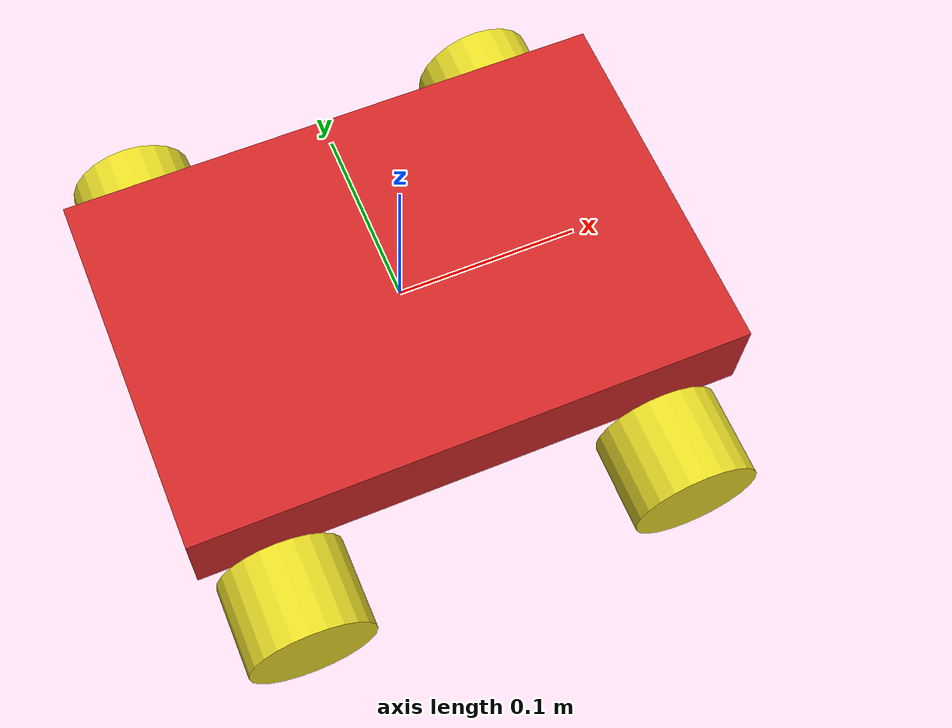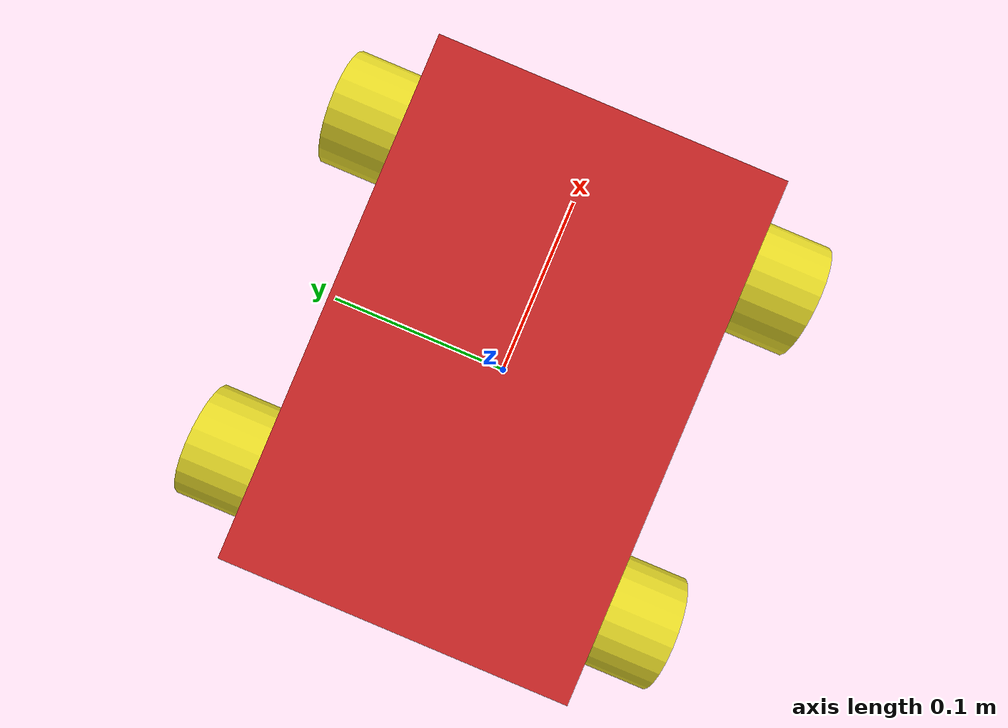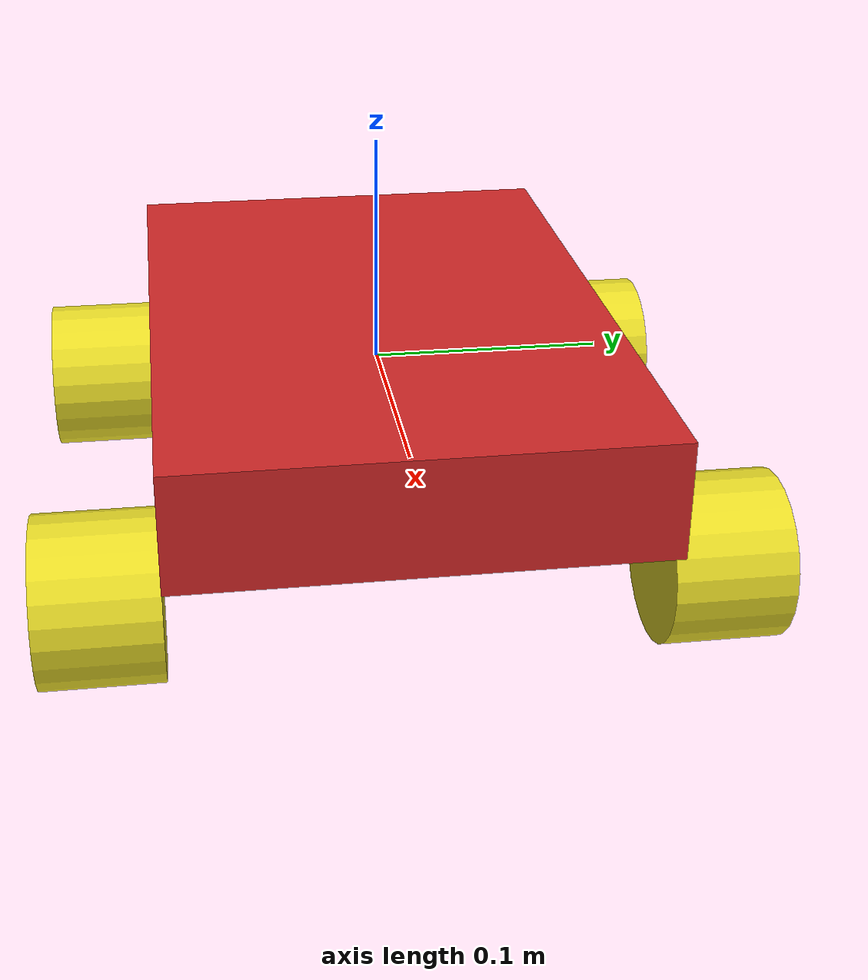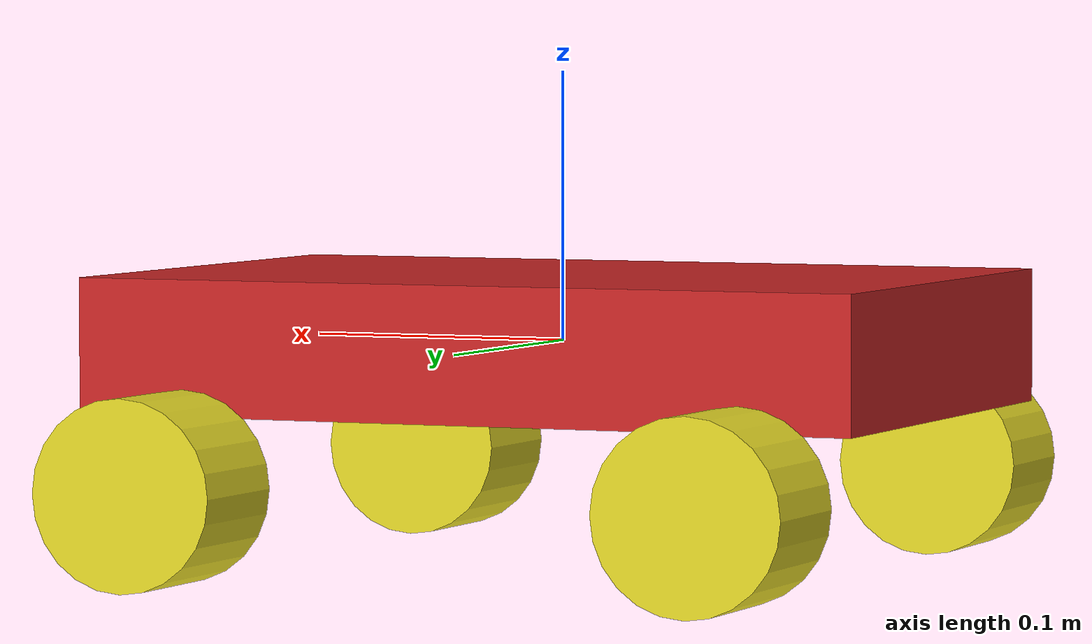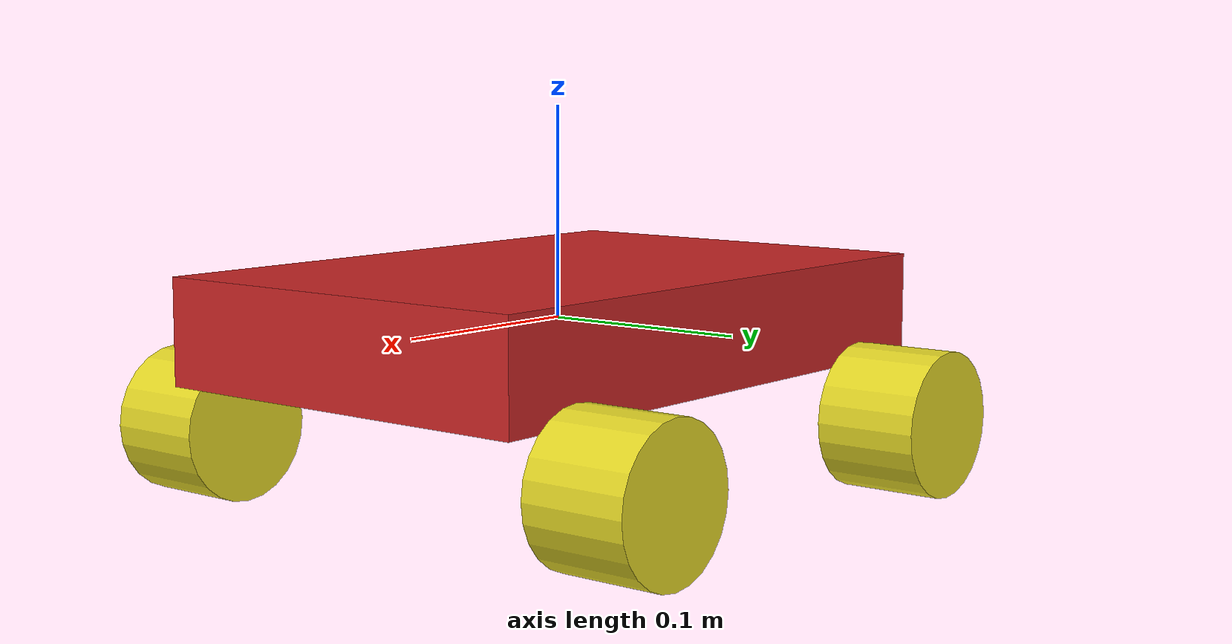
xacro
<?xml version="1.0"?>

<robot name="differential_drive_robot" xmlns:xacro="http://www.ros.org/wiki/xacro">

<!-- Body dimensions -->
<xacro:property name="body_link_x_dim" value="0.3"/>
<xacro:property name="body_link_y_dim" value="0.2"/>
<xacro:property name="body_link_z_dim" value="0.05"/>

<!-- Wheel dimensions -->
<xacro:property name="wheel_link_radius" value="0.035"/>
<xacro:property name="wheel_link_length" value="0.05"/>
<xacro:property name="wheel_link_z_location" value="-0.05"/>

<!-- Material Density -->
<xacro:property name="body_density" value="2710.0"/>
<xacro:property name="wheel_density" value="2710.0"/>

<!-- Pi Constant -->
<xacro:property name="pi_const" value="3.141592265"/>

<!-- Robot body and wheel mass -->
<xacro:property name="body_mass" value="${body_density*body_link_x_dim*body_link_y_dim*body_link_z_dim}"/>
<xacro:property name="wheel_mass" value="${wheel_density*pi_const*wheel_link_radius*wheel_link_radius*wheel_link_length}"/>

<!-- Moments of inertial of the wheel -->
<xacro:property name="Iz_wheel" value="${0.5*wheel_mass*wheel_link_radius*wheel_link_radius}"/>
<xacro:property name="I_wheel" value="${(1.0/12.0)*wheel_mass*(3*wheel_link_radius*wheel_link_radius+wheel_link_length*wheel_link_length)}"/>

<!-- macros -->

<xacro:macro name="inertia_wheel">
    <xacro:inertial>
        <origin rpy="0 0 0" xyz="0 0 0"/>
        <xacro:mass value="${wheel_mass}"/>
        <xacro:inertia ixx="${I_wheel}" ixy="0.0" ixz="0.0" iyy="${I_wheel}" iyz="0" izz="${Iz_wheel}"/>

    </xacro:inertial>

</xacro:macro>

<xacro:include filename="$(find my_bot)/description/robot.gazebo"/>

<!-- DEFINING LINKS AND JOINTS -->

<!-- Body Link of Robot -->

<link name="body_link">
    <visual>
        <geometry>
            <box size="${body_link_x_dim} ${body_link_y_dim} ${body_link_z_dim}" />
        </geometry>
        <origin rpy="0 0 0" xyz="0 0 0"/>
    </visual>

    <collision>
        <geometry>
            <box size="${body_link_x_dim} ${body_link_y_dim} ${body_link_z_dim}" />
        </geometry>
        <origin rpy="0 0 0" xyz="0 0 0"/>

    </collision>

    <xacro:inertial>
        <origin rpy="0 0 0" xyz="0 0 0"/>
        <xacro:mass value="${body_mass}"/>
        <xacro:inertia
        ixx="${(1/12)*body_mass*(body_link_y_dim+body_link_z_dim*body_link_z_dim)}"
        ixy="0"
        ixz="0"
        iyy="${(1/12)*body_mass*(body_link_x_dim*body_link_x_dim+body_link_z_dim*body_link_z_dim)}"
        iyz="0"
        izz="${(1/12)*body_mass*(body_link_y_dim*body_link_y_dim+body_link_x_dim*body_link_x_dim)}"/>
    </xacro:inertial>
</link>

 <!-- Odom link -->
  <link name="odom"/>

  <!-- Fixed joint between odom and body_link -->
  <joint name="odom_to_base" type="fixed">
    <parent link="odom"/>
    <child link="body_link"/>
    <origin xyz="0 0 0" rpy="0 0 0"/>
  </joint>
<!-- Back Right Wheel of Robot & Joint -->

<joint name="wheel1_joint" type="continuous">
    <parent link="body_link"/>
    <child link="wheel1_link"/>
    <origin xyz="${-body_link_x_dim/2+1.2*wheel_link_radius} ${-body_link_y_dim/2-wheel_link_length/2} ${wheel_link_z_location}" rpy="0 0 0"/>
    <axis xyz="0 1 0"/>
    <limit effort="1000" velocity="1000"/>
    <dynamics damping="1.0" friction="1.0"/>
</joint>

<link name="wheel1_link">
    <visual>
        <origin rpy="1.570795 0 0" xyz="0 0 0"/>
        <geometry>
            <cylinder length="${wheel_link_length}" radius="${wheel_link_radius}"/>
        </geometry>
    </visual>

    <collision>
        <origin rpy="1.570795 0 0" xyz="0 0 0"/>
        <geometry>
            <cylinder length="${wheel_link_length}" radius="${wheel_link_radius}"/>
        </geometry>
    </collision>

    <xacro:inertia_wheel />
</link>

<!-- Back Left Wheel of Robot & Joint -->

<joint name="wheel2_joint" type="continuous">
    <parent link="body_link"/>
    <child link="wheel2_link"/>
    <origin xyz="${-body_link_x_dim/2+1.2*wheel_link_radius} ${body_link_y_dim/2+wheel_link_length/2} ${wheel_link_z_location}" rpy="0 0 0"/>
    <axis xyz="0 1 0"/>
    <limit effort="1000" velocity="1000"/>
    <dynamics damping="1.0" friction="1.0"/>
</joint>

<link name="wheel2_link">
    <visual>
        <origin rpy="1.570795 0 0" xyz="0 0 0"/>
        <geometry>
            <cylinder length="${wheel_link_length}" radius="${wheel_link_radius}"/>
        </geometry>
    </visual>

    <collision>
        <origin rpy="1.570795 0 0" xyz="0 0 0"/>
        <geometry>
            <cylinder length="${wheel_link_length}" radius="${wheel_link_radius}"/>
        </geometry>
    </collision>

    <xacro:inertia_wheel />
</link>

<!-- Front Right Wheel of Robot & Joint -->

<joint name="wheel3_joint" type="continuous">
    <parent link="body_link"/>
    <child link="wheel3_link"/>
    <origin xyz="${body_link_x_dim/2-1.2*wheel_link_radius} ${-body_link_y_dim/2-wheel_link_length/2} ${wheel_link_z_location}" rpy="0 0 0"/>
    <axis xyz="0 1 0"/>
    <limit effort="1000" velocity="1000"/>
    <dynamics damping="1.0" friction="1.0"/>
</joint>

<link name="wheel3_link">
    <visual>
        <origin rpy="1.570795 0 0" xyz="0 0 0"/>
        <geometry>
            <cylinder length="${wheel_link_length}" radius="${wheel_link_radius}"/>
        </geometry>
    </visual>

    <collision>
        <origin rpy="1.570795 0 0" xyz="0 0 0"/>
        <geometry>
            <cylinder length="${wheel_link_length}" radius="${wheel_link_radius}"/>
        </geometry>
    </collision>

    <xacro:inertia_wheel />
</link>

<!-- Front Left Wheel of Robot & Joint -->

<joint name="wheel4_joint" type="continuous">
    <parent link="body_link"/>
    <child link="wheel4_link"/>
    <origin xyz="${body_link_x_dim/2-1.2*wheel_link_radius} ${body_link_y_dim/2+wheel_link_length/2} ${wheel_link_z_location}" rpy="0 0 0"/>
    <axis xyz="0 1 0"/>
    <limit effort="1000" velocity="1000"/>
    <dynamics damping="1.0" friction="1.0"/>
</joint>

<link name="wheel4_link">
    <visual>
        <origin rpy="1.570795 0 0" xyz="0 0 0"/>
        <geometry>
            <cylinder length="${wheel_link_length}" radius="${wheel_link_radius}"/>
        </geometry>
    </visual>

    <collision>
        <origin rpy="1.570795 0 0" xyz="0 0 0"/>
        <geometry>
            <cylinder length="${wheel_link_length}" radius="${wheel_link_radius}"/>
        </geometry>
    </collision>

    <xacro:inertia_wheel />
</link>

    <ros2_control name="MyRobotHardware" type="system">
    <hardware>
        <plugin>gazebo_ros2_control/GazeboSystem</plugin>
    </hardware>
    <joint name="wheel1_joint">
        <command_interface name="velocity"/>
        <state_interface name="velocity"/>
    </joint>
    <joint name="wheel2_joint">
        <command_interface name="velocity"/>
        <state_interface name="velocity"/>
    </joint>
    <joint name="wheel3_joint">
        <command_interface name="velocity"/>
        <state_interface name="velocity"/>
    </joint>
    <joint name="wheel4_joint">
        <command_interface name="velocity"/>
        <state_interface name="velocity"/>
    </joint>
    </ros2_control>

</robot>
